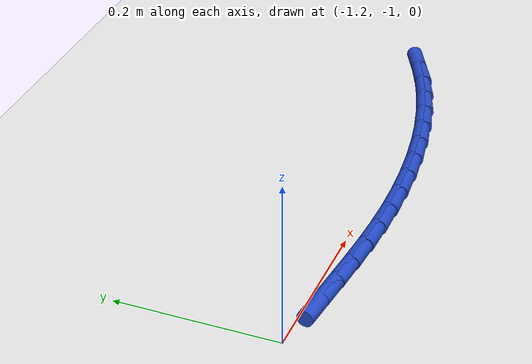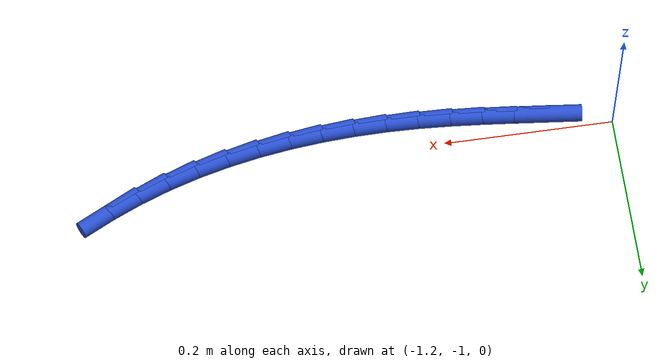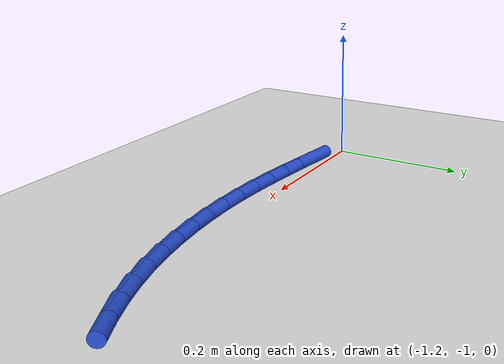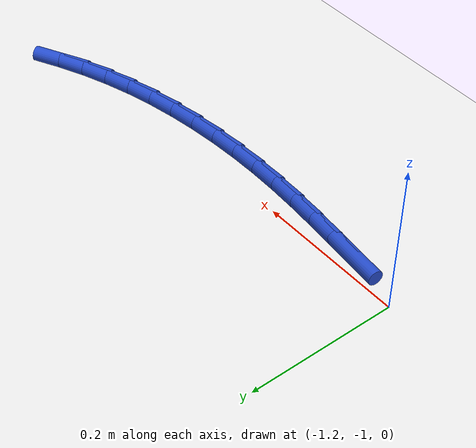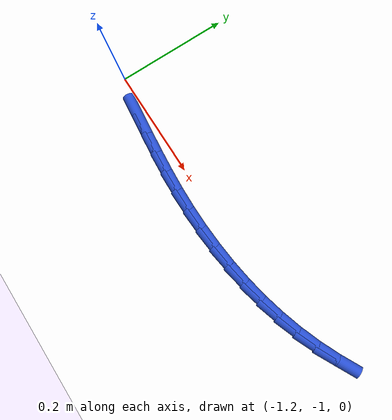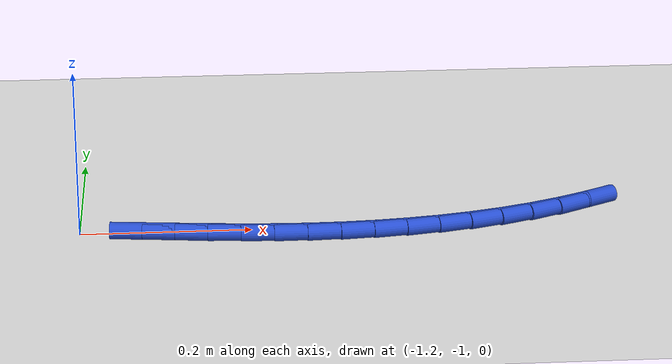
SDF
<sdf version="1.6">
 <world name="default">
  <model name="ground_plane">
   <static>1</static>
   <link name="link">
    <collision name="collision">
     <geometry><plane><normal>0 0 1</normal><size>100 100</size></plane></geometry>
     <surface><friction><ode><mu>100</mu><mu2>50</mu2></ode></friction></surface>
    </collision>
    <visual name="visual">
     <cast_shadows>0</cast_shadows>
     <geometry><plane><normal>0 0 1</normal><size>100 100</size></plane></geometry>
     <material>
      <script><uri>file://media/materials/scripts/gazebo.material</uri><name>Gazebo/WhiteGlow</name></script>
     </material>
    </visual>
   </link>
  </model>
  <model name="line">
   <link name="link_135">
    <pose>-1.1248875416299082 -1.0161927185163573 0.01 0 1.57 -0.1048983157022117</pose>
    <collision name="collision">
     <geometry><cylinder><radius>0.01</radius><length>0.08</length></cylinder></geometry>
    </collision>
    <visual name="visual">
     <material>
      <script><name>Gazebo/Blue</name><uri>file://media/materials/scripts/gazebo.material</uri></script>
     </material>
     <geometry><cylinder><radius>0.01</radius><length>0.08</length></cylinder></geometry>
    </visual>
   </link>
   <link name="link_136">
    <pose>-1.0872088956333243 -1.020159706161061 0.01 0 1.57 -0.10045520162918148</pose>
    <collision name="collision">
     <geometry><cylinder><radius>0.01</radius><length>0.08</length></cylinder></geometry>
    </collision>
    <visual name="visual">
     <material>
      <script><name>Gazebo/Blue</name><uri>file://media/materials/scripts/gazebo.material</uri></script>
     </material>
     <geometry><cylinder><radius>0.01</radius><length>0.08</length></cylinder></geometry>
    </visual>
   </link>
   <link name="link_137">
    <pose>-1.049462797007676 -1.0239643044414974 0.01 0 1.57 -0.08517686181314603</pose>
    <collision name="collision">
     <geometry><cylinder><radius>0.01</radius><length>0.08</length></cylinder></geometry>
    </collision>
    <visual name="visual">
     <material>
      <script><name>Gazebo/Blue</name><uri>file://media/materials/scripts/gazebo.material</uri></script>
     </material>
     <geometry><cylinder><radius>0.01</radius><length>0.08</length></cylinder></geometry>
    </visual>
   </link>
   <link name="link_138">
    <pose>-1.0115871782110049 -1.0271982554521346 0.01 0 1.57 -0.05916976417144785</pose>
    <collision name="collision">
     <geometry><cylinder><radius>0.01</radius><length>0.08</length></cylinder></geometry>
    </collision>
    <visual name="visual">
     <material>
      <script><name>Gazebo/Blue</name><uri>file://media/materials/scripts/gazebo.material</uri></script>
     </material>
     <geometry><cylinder><radius>0.01</radius><length>0.08</length></cylinder></geometry>
    </visual>
   </link>
   <link name="link_139">
    <pose>-0.9735199800553657 -1.0294533149043537 0.01 0 1.57 -0.024327061199340208</pose>
    <collision name="collision">
     <geometry><cylinder><radius>0.01</radius><length>0.08</length></cylinder></geometry>
    </collision>
    <visual name="visual">
     <material>
      <script><name>Gazebo/Blue</name><uri>file://media/materials/scripts/gazebo.material</uri></script>
     </material>
     <geometry><cylinder><radius>0.01</radius><length>0.08</length></cylinder></geometry>
    </visual>
   </link>
   <link name="link_140">
    <pose>-0.9352381284529515 -1.0303847836079199 0.01 0 1.57 0.013717236971243761</pose>
    <collision name="collision">
     <geometry><cylinder><radius>0.01</radius><length>0.08</length></cylinder></geometry>
    </collision>
    <visual name="visual">
     <material>
      <script><name>Gazebo/Blue</name><uri>file://media/materials/scripts/gazebo.material</uri></script>
     </material>
     <geometry><cylinder><radius>0.01</radius><length>0.08</length></cylinder></geometry>
    </visual>
   </link>
   <link name="link_141">
    <pose>-0.8968474921262604 -1.029858137119813 0.01 0 1.57 0.05405359655059868</pose>
    <collision name="collision">
     <geometry><cylinder><radius>0.01</radius><length>0.08</length></cylinder></geometry>
    </collision>
    <visual name="visual">
     <material>
      <script><name>Gazebo/Blue</name><uri>file://media/materials/scripts/gazebo.material</uri></script>
     </material>
     <geometry><cylinder><radius>0.01</radius><length>0.08</length></cylinder></geometry>
    </visual>
   </link>
   <link name="link_142">
    <pose>-0.8584805617601975 -1.027782244375878 0.01 0 1.57 0.0969523062543438</pose>
    <collision name="collision">
     <geometry><cylinder><radius>0.01</radius><length>0.08</length></cylinder></geometry>
    </collision>
    <visual name="visual">
     <material>
      <script><name>Gazebo/Blue</name><uri>file://media/materials/scripts/gazebo.material</uri></script>
     </material>
     <geometry><cylinder><radius>0.01</radius><length>0.08</length></cylinder></geometry>
    </visual>
   </link>
   <link name="link_143">
    <pose>-0.8202698280396696 -1.0240659743119584 0.01 0 1.57 0.14268111165025643</pose>
    <collision name="collision">
     <geometry><cylinder><radius>0.01</radius><length>0.08</length></cylinder></geometry>
    </collision>
    <visual name="visual">
     <material>
      <script><name>Gazebo/Blue</name><uri>file://media/materials/scripts/gazebo.material</uri></script>
     </material>
     <geometry><cylinder><radius>0.01</radius><length>0.08</length></cylinder></geometry>
    </visual>
   </link>
   <link name="link_144">
    <pose>-0.7823477816495821 -1.0186181958638998 0.01 0 1.57 0.1914976417929519</pose>
    <collision name="collision">
     <geometry><cylinder><radius>0.01</radius><length>0.08</length></cylinder></geometry>
    </collision>
    <visual name="visual">
     <material>
      <script><name>Gazebo/Blue</name><uri>file://media/materials/scripts/gazebo.material</uri></script>
     </material>
     <geometry><cylinder><radius>0.01</radius><length>0.08</length></cylinder></geometry>
    </visual>
   </link>
   <link name="link_145">
    <pose>-0.7448469132748402 -1.0113477779675457 0.01 0 1.57 0.2436380126298069</pose>
    <collision name="collision">
     <geometry><cylinder><radius>0.01</radius><length>0.08</length></cylinder></geometry>
    </collision>
    <visual name="visual">
     <material>
      <script><name>Gazebo/Blue</name><uri>file://media/materials/scripts/gazebo.material</uri></script>
     </material>
     <geometry><cylinder><radius>0.01</radius><length>0.08</length></cylinder></geometry>
    </visual>
   </link>
   <link name="link_146">
    <pose>-0.7078997136003493 -1.0021635895587406 0.01 0 1.57 0.2993010407744175</pose>
    <collision name="collision">
     <geometry><cylinder><radius>0.01</radius><length>0.08</length></cylinder></geometry>
    </collision>
    <visual name="visual">
     <material>
      <script><name>Gazebo/Blue</name><uri>file://media/materials/scripts/gazebo.material</uri></script>
     </material>
     <geometry><cylinder><radius>0.01</radius><length>0.08</length></cylinder></geometry>
    </visual>
   </link>
   <link name="link_147">
    <pose>-0.6716386733110157 -0.9909744995733292 0.01 0 1.57 0.35812025809511644</pose>
    <collision name="collision">
     <geometry><cylinder><radius>0.01</radius><length>0.08</length></cylinder></geometry>
    </collision>
    <visual name="visual">
     <material>
      <script><name>Gazebo/Blue</name><uri>file://media/materials/scripts/gazebo.material</uri></script>
     </material>
     <geometry><cylinder><radius>0.01</radius><length>0.08</length></cylinder></geometry>
    </visual>
   </link>
   <link name="link_148">
    <pose>-0.6361857153611082 -0.9777059356446521 0.01 0 1.57 0.41604978568949225</pose>
    <collision name="collision">
     <geometry><cylinder><radius>0.01</radius><length>0.08</length></cylinder></geometry>
    </collision>
    <visual name="visual">
     <material>
      <script><name>Gazebo/Blue</name><uri>file://media/materials/scripts/gazebo.material</uri></script>
     </material>
     <geometry><cylinder><radius>0.01</radius><length>0.08</length></cylinder></geometry>
    </visual>
   </link>
   <link name="link_149">
    <pose>-0.6015786858636755 -0.9624150663661766 0.01 0 1.57 0.470998310463827</pose>
    <collision name="collision">
     <geometry><cylinder><radius>0.01</radius><length>0.08</length></cylinder></geometry>
    </collision>
    <visual name="visual">
     <material>
      <script><name>Gazebo/Blue</name><uri>file://media/materials/scripts/gazebo.material</uri></script>
     </material>
     <geometry><cylinder><radius>0.01</radius><length>0.08</length></cylinder></geometry>
    </visual>
   </link>
  </model>
 </world>
</sdf>
